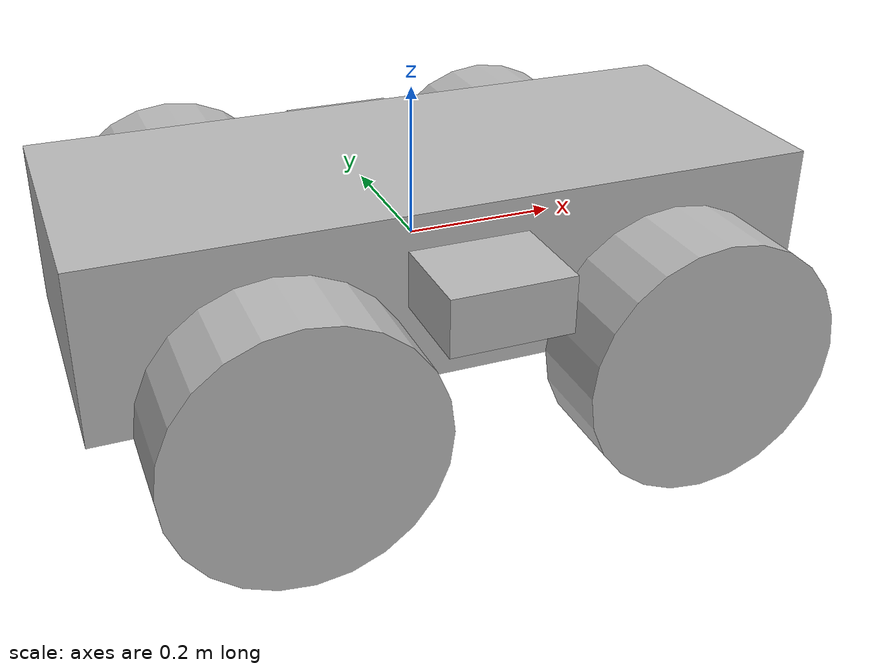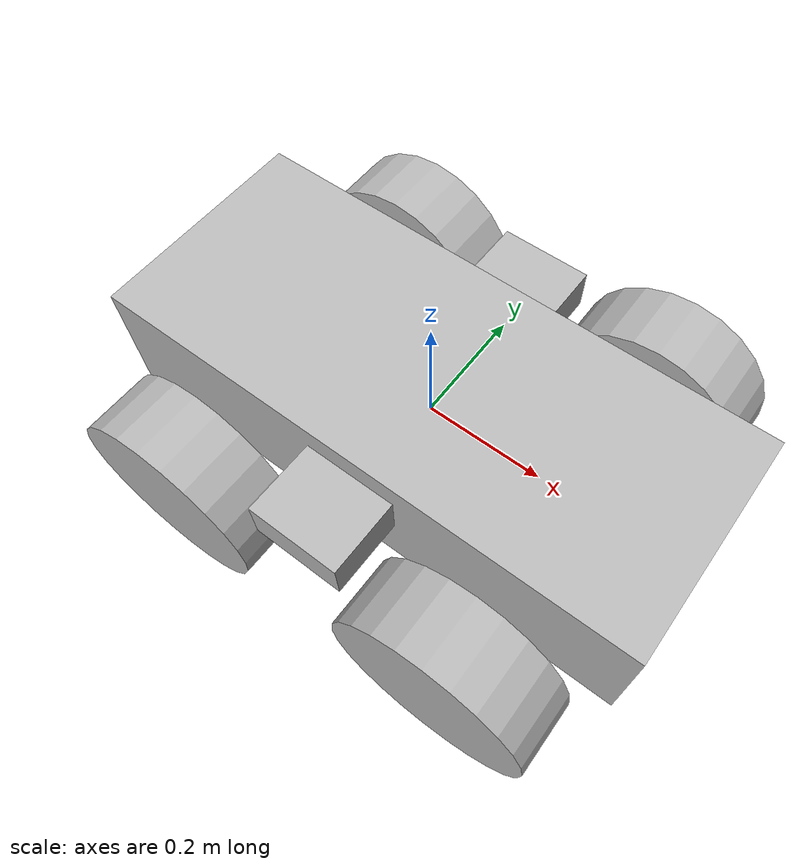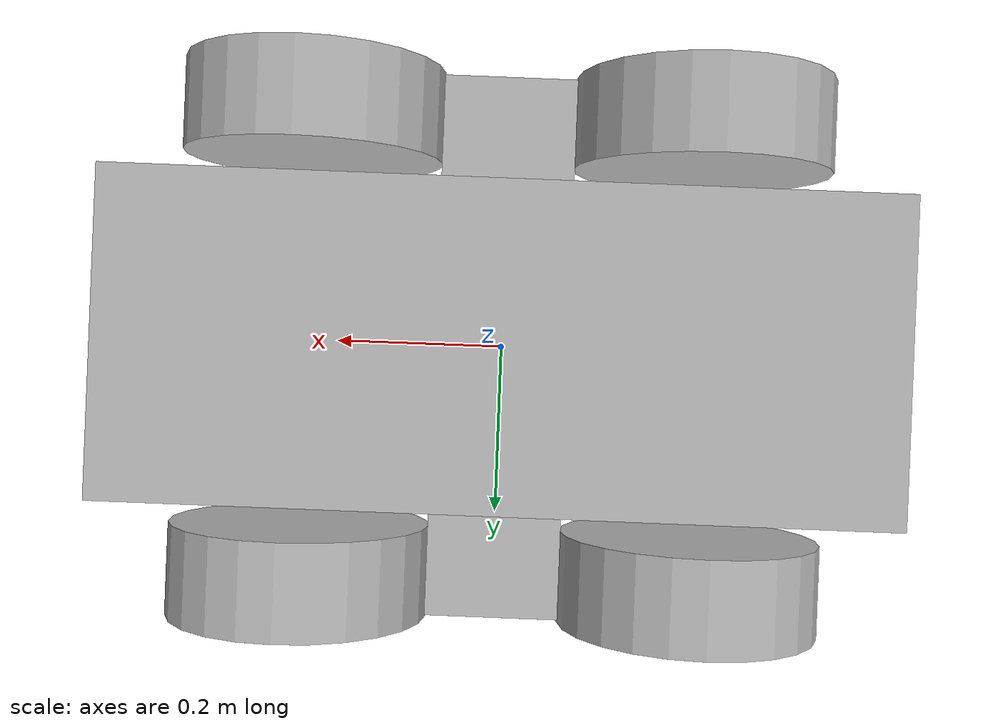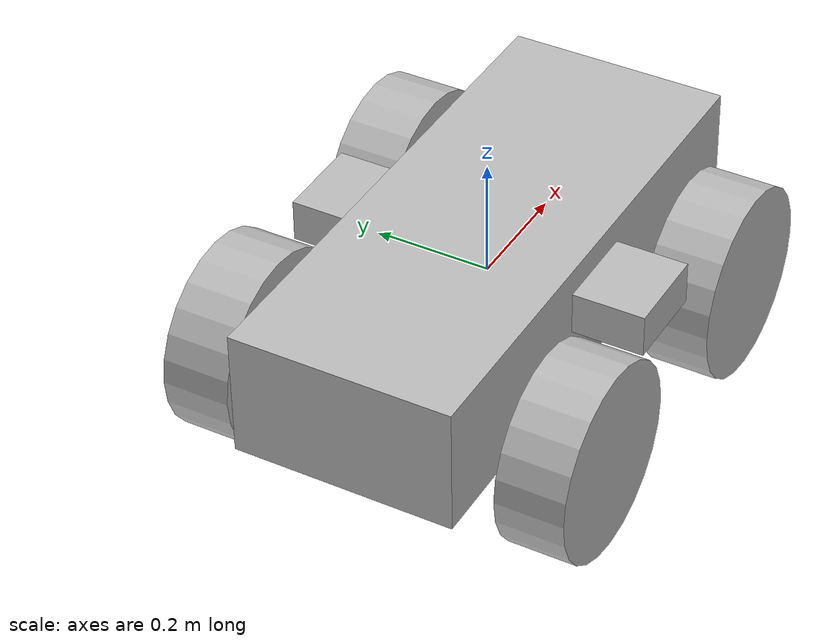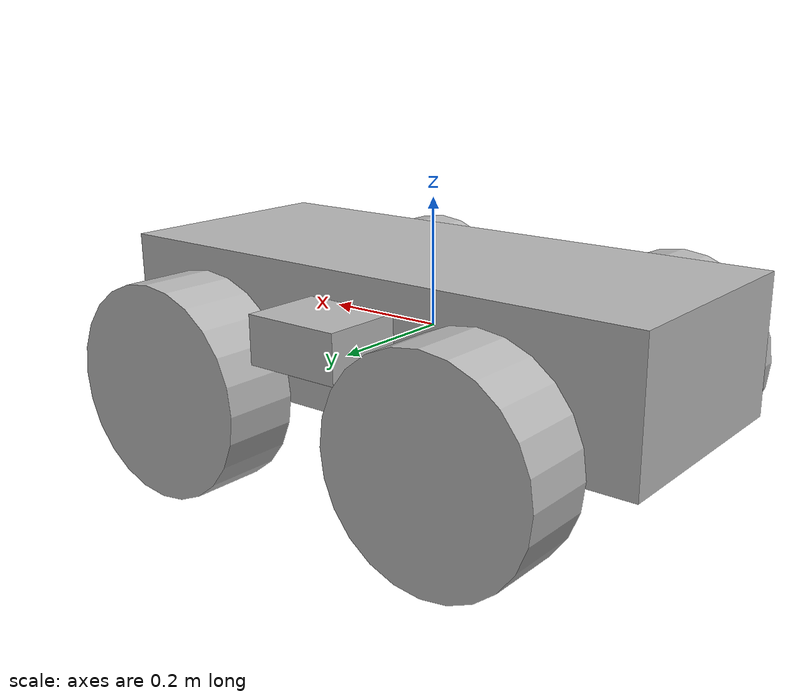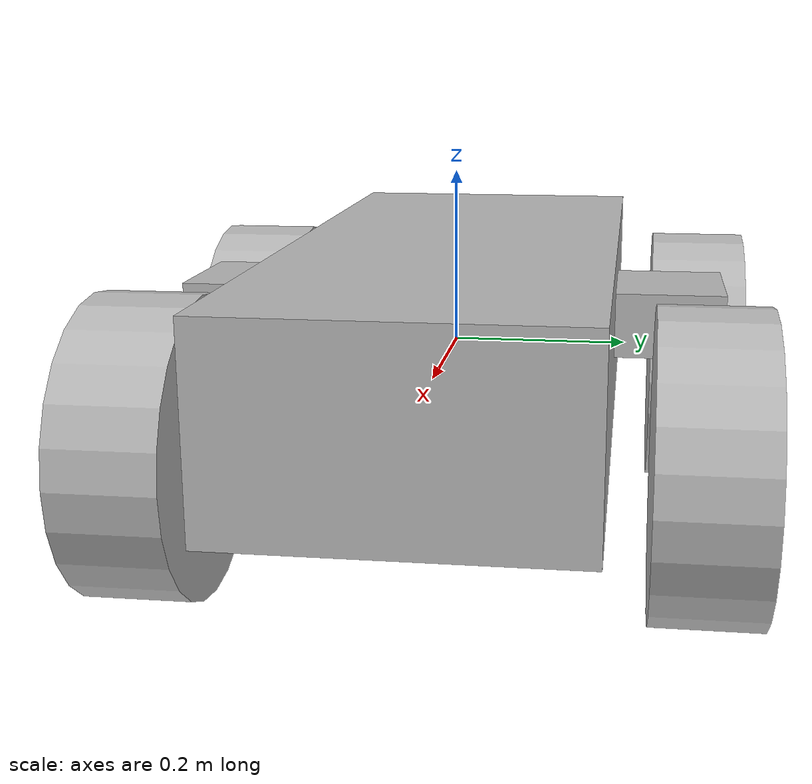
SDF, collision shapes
<sdf version='1.11'>
  <model name='scout_v2'>
    <link name='base_link'>
      <inertial>
        <pose>0 0 0 0 0 0</pose>
        <mass>40</mass>
        <inertia>
          <ixx>2.2886410000000001</ixx>
          <ixy>0</ixy>
          <ixz>0</ixz>
          <iyy>5.1039760000000003</iyy>
          <iyz>0</iyz>
          <izz>3.4314650000000002</izz>
        </inertia>
      </inertial>
      <collision name='base_link_collision'>
        <pose>0 0 0.0080000000000000002 0 0 0</pose>
        <geometry>
          <box>
            <size>0.92500000000000004 0.38 0.22</size>
          </box>
        </geometry>
      </collision>
      <collision name='base_link_collision_1'>
        <pose>0 0 0.036666666666666667 0 0 0</pose>
        <geometry>
          <box>
            <size>0.1541666666666667 0.627 0.073333333333333334</size>
          </box>
        </geometry>
      </collision>
      <visual name='base_link_visual'>
        <pose>0 0 0 0 0 0</pose>
        <geometry>
          <mesh>
            <scale>1 1 1</scale>
            <uri>model://scout_description/meshes/scout_v2/base_link.dae</uri>
          </mesh>
        </geometry>
      </visual>
    </link>
    <joint name='front_left_wheel' type='revolute'>
      <pose relative_to='base_link'>0.249 0.29153000000000001 -0.070199999999999999 3.1415899999999999 0 0</pose>
      <parent>base_link</parent>
      <child>front_left_wheel_link</child>
      <axis>
        <xyz>0 -1 0</xyz>
        <limit>
          <lower>-inf</lower>
          <upper>inf</upper>
        </limit>
        <dynamics>
          <spring_reference>0</spring_reference>
          <spring_stiffness>0</spring_stiffness>
        </dynamics>
      </axis>
    </joint>
    <link name='front_left_wheel_link'>
      <pose relative_to='front_left_wheel'>0 0 0 0 0 0</pose>
      <inertial>
        <pose>0 0 0 0 0 0</pose>
        <mass>3</mass>
        <inertia>
          <ixx>0.023712</ixx>
          <ixy>0</ixy>
          <ixz>0</ixz>
          <iyy>0.040634999999999998</iyy>
          <iyz>0</iyz>
          <izz>0.023712</izz>
        </inertia>
      </inertial>
      <collision name='front_left_wheel_link_collision'>
        <pose>0 0 0 1.5707949999999999 0 0</pose>
        <geometry>
          <cylinder>
            <length>0.11652999999999999</length>
            <radius>0.16458999999999999</radius>
          </cylinder>
        </geometry>
        <surface>
          <friction>
              <ode>
              <!-- Coulomb friction coefficients (dimensionless) -->
              <mu>1.0</mu>
              <mu2>1.0</mu2>

              <!-- Slip compliance (0 = no slip; small nonzero can help stability) -->
              <slip1>0.01</slip1>
              <slip2>0.01</slip2>
              </ode>
          </friction>

          <contact>
              <ode>
              <!-- Contact stiffness/damping -->
              <kp>1000000</kp>
              <kd>100</kd>
              </ode>
          </contact>
        </surface>
      </collision>
      <visual name='front_left_wheel_link_visual'>
        <pose>0 0 0 0 0 0</pose>
        <geometry>
          <mesh>
            <scale>1 1 1</scale>
            <uri>model://scout_description/meshes/scout_v2/wheel_type2.dae</uri>
          </mesh>
        </geometry>
      </visual>
    </link>
    <joint name='front_right_wheel' type='revolute'>
      <pose relative_to='base_link'>0.249 -0.29153000000000001 -0.070199999999999999 3.1415899999999999 0 0</pose>
      <parent>base_link</parent>
      <child>front_right_wheel_link</child>
      <axis>
        <xyz>0 -1 0</xyz>
        <limit>
          <lower>-inf</lower>
          <upper>inf</upper>
        </limit>
        <dynamics>
          <spring_reference>0</spring_reference>
          <spring_stiffness>0</spring_stiffness>
        </dynamics>
      </axis>
    </joint>
    <link name='front_right_wheel_link'>
      <pose relative_to='front_right_wheel'>0 0 0 0 0 0</pose>
      <inertial>
        <pose>0 0 0 0 0 0</pose>
        <mass>3</mass>
        <inertia>
          <ixx>0.023712</ixx>
          <ixy>0</ixy>
          <ixz>0</ixz>
          <iyy>0.040634999999999998</iyy>
          <iyz>0</iyz>
          <izz>0.023712</izz>
        </inertia>
      </inertial>
      <collision name='front_right_wheel_link_collision'>
        <pose>0 0 0 1.5707949999999999 0 0</pose>
        <geometry>
          <cylinder>
            <length>0.11652999999999999</length>
            <radius>0.16458999999999999</radius>
          </cylinder>
        </geometry>
        <surface>
          <friction>
              <ode>
              <!-- Coulomb friction coefficients (dimensionless) -->
              <mu>1.0</mu>
              <mu2>1.0</mu2>

              <!-- Slip compliance (0 = no slip; small nonzero can help stability) -->
              <slip1>0.01</slip1>
              <slip2>0.01</slip2>
              </ode>
          </friction>

          <contact>
              <ode>
              <!-- Contact stiffness/damping -->
              <kp>1000000</kp>
              <kd>100</kd>
              </ode>
          </contact>
        </surface>
      </collision>
      <visual name='front_right_wheel_link_visual'>
        <pose>0 0 0 0 0 0</pose>
        <geometry>
          <mesh>
            <scale>1 1 1</scale>
            <uri>model://scout_description/meshes/scout_v2/wheel_type1.dae</uri>
          </mesh>
        </geometry>
      </visual>
    </link>
    <joint name='rear_left_wheel' type='revolute'>
      <pose relative_to='base_link'>-0.249 0.29153000000000001 -0.070199999999999999 3.1415899999999999 0 0</pose>
      <parent>base_link</parent>
      <child>rear_left_wheel_link</child>
      <axis>
        <xyz>0 -1 0</xyz>
        <limit>
          <lower>-inf</lower>
          <upper>inf</upper>
        </limit>
        <dynamics>
          <spring_reference>0</spring_reference>
          <spring_stiffness>0</spring_stiffness>
        </dynamics>
      </axis>
    </joint>
    <link name='rear_left_wheel_link'>
      <pose relative_to='rear_left_wheel'>0 0 0 0 0 0</pose>
      <inertial>
        <pose>0 0 0 0 0 0</pose>
        <mass>3</mass>
        <inertia>
          <ixx>0.023712</ixx>
          <ixy>0</ixy>
          <ixz>0</ixz>
          <iyy>0.040634999999999998</iyy>
          <iyz>0</iyz>
          <izz>0.023712</izz>
        </inertia>
      </inertial>
      <collision name='rear_left_wheel_link_collision'>
        <pose>0 0 0 1.5707949999999999 0 0</pose>
        <geometry>
          <cylinder>
            <length>0.11652999999999999</length>
            <radius>0.16458999999999999</radius>
          </cylinder>
        </geometry>
        <surface>
          <friction>
              <ode>
              <!-- Coulomb friction coefficients (dimensionless) -->
              <mu>1.0</mu>
              <mu2>1.0</mu2>

              <!-- Slip compliance (0 = no slip; small nonzero can help stability) -->
              <slip1>0.01</slip1>
              <slip2>0.01</slip2>
              </ode>
          </friction>

          <contact>
              <ode>
              <!-- Contact stiffness/damping -->
              <kp>1000000</kp>
              <kd>100</kd>
              </ode>
          </contact>
        </surface>
      </collision>
      <visual name='rear_left_wheel_link_visual'>
        <pose>0 0 0 0 0 0</pose>
        <geometry>
          <mesh>
            <scale>1 1 1</scale>
            <uri>model://scout_description/meshes/scout_v2/wheel_type1.dae</uri>
          </mesh>
        </geometry>
      </visual>
    </link>
    <joint name='rear_right_wheel' type='revolute'>
      <pose relative_to='base_link'>-0.249 -0.29153000000000001 -0.070199999999999999 3.1415899999999999 0 0</pose>
      <parent>base_link</parent>
      <child>rear_right_wheel_link</child>
      <axis>
        <xyz>0 -1 0</xyz>
        <limit>
          <lower>-inf</lower>
          <upper>inf</upper>
        </limit>
        <dynamics>
          <spring_reference>0</spring_reference>
          <spring_stiffness>0</spring_stiffness>
        </dynamics>
      </axis>
    </joint>
    <link name='rear_right_wheel_link'>
      <pose relative_to='rear_right_wheel'>0 0 0 0 0 0</pose>
      <inertial>
        <pose>0 0 0 0 0 0</pose>
        <mass>3</mass>
        <inertia>
          <ixx>0.023712</ixx>
          <ixy>0</ixy>
          <ixz>0</ixz>
          <iyy>0.040634999999999998</iyy>
          <iyz>0</iyz>
          <izz>0.023712</izz>
        </inertia>
      </inertial>
      <collision name='rear_right_wheel_link_collision'>
        <pose>0 0 0 1.5707949999999999 0 0</pose>
        <geometry>
          <cylinder>
            <length>0.11652999999999999</length>
            <radius>0.16458999999999999</radius>
          </cylinder>
        </geometry>
        <surface>
          <friction>
              <ode>
              <!-- Coulomb friction coefficients (dimensionless) -->
              <mu>1.0</mu>
              <mu2>1.0</mu2>

              <!-- Slip compliance (0 = no slip; small nonzero can help stability) -->
              <slip1>0.01</slip1>
              <slip2>0.01</slip2>
              </ode>
          </friction>

          <contact>
              <ode>
              <!-- Contact stiffness/damping -->
              <kp>1000000</kp>
              <kd>100</kd>
              </ode>
          </contact>
        </surface>
      </collision>
      <visual name='rear_right_wheel_link_visual'>
        <pose>0 0 0 0 0 0</pose>
        <geometry>
          <mesh>
            <scale>1 1 1</scale>
            <uri>model://scout_description/meshes/scout_v2/wheel_type2.dae</uri>
          </mesh>
        </geometry>
      </visual>
    </link>
    <frame name='base_footprint_joint' attached_to='base_link'>
      <pose>0 0 -0.23479 0 0 0</pose>
    </frame>
    <frame name='base_footprint' attached_to='base_footprint_joint'>
      <pose>0 0 0 0 0 0</pose>
    </frame>
    <frame name='inertial_joint' attached_to='base_link'>
      <pose>0 0 0 0 0 0</pose>
    </frame>
    <frame name='inertial_link' attached_to='inertial_joint'>
      <pose>0 0 0 0 0 0</pose>
    </frame>

    <plugin filename="libgz_ros2_control-system.so"
        name="gz_ros2_control::GazeboSimROS2ControlPlugin">
     <parameters>/home/localuser/scout_ws/src/my_scout/config/my_controllers.yaml</parameters>
    </plugin>

    <ros2_control name="GazeboSystem" type="system">
            <hardware>
                <plugin>gz_ros2_control/GazeboSimSystem</plugin>
            </hardware>
            <joint name="front_right_wheel" >
                <command_interface name="velocity">
                    <param name="min">-10</param>
                    <param name="max">10</param>
                </command_interface>
                <state_interface name="velocity"/>
                <state_interface name="position"/>
            </joint>
            <joint name="front_left_wheel" >
                <command_interface name="velocity">
                    <param name="min">-10</param>
                    <param name="max">10</param>
                </command_interface>
                <state_interface name="velocity"/>
                <state_interface name="position"/>
            </joint>
            <joint name="rear_right_wheel" >
                <command_interface name="velocity">
                    <param name="min">-10</param>
                    <param name="max">10</param>
                </command_interface>
                <state_interface name="velocity"/>
                <state_interface name="position"/>
            </joint>
            <joint name="rear_left_wheel" >
                <command_interface name="velocity">
                    <param name="min">-10</param>
                    <param name="max">10</param>
                </command_interface>
                <state_interface name="velocity"/>
                <state_interface name="position"/>
            </joint>
    </ros2_control>

  </model>
</sdf>
